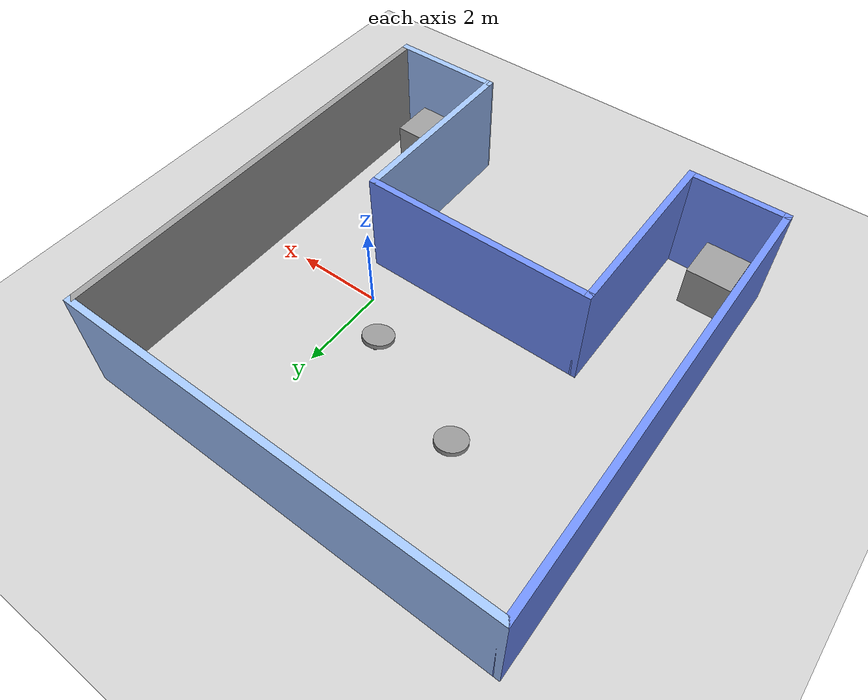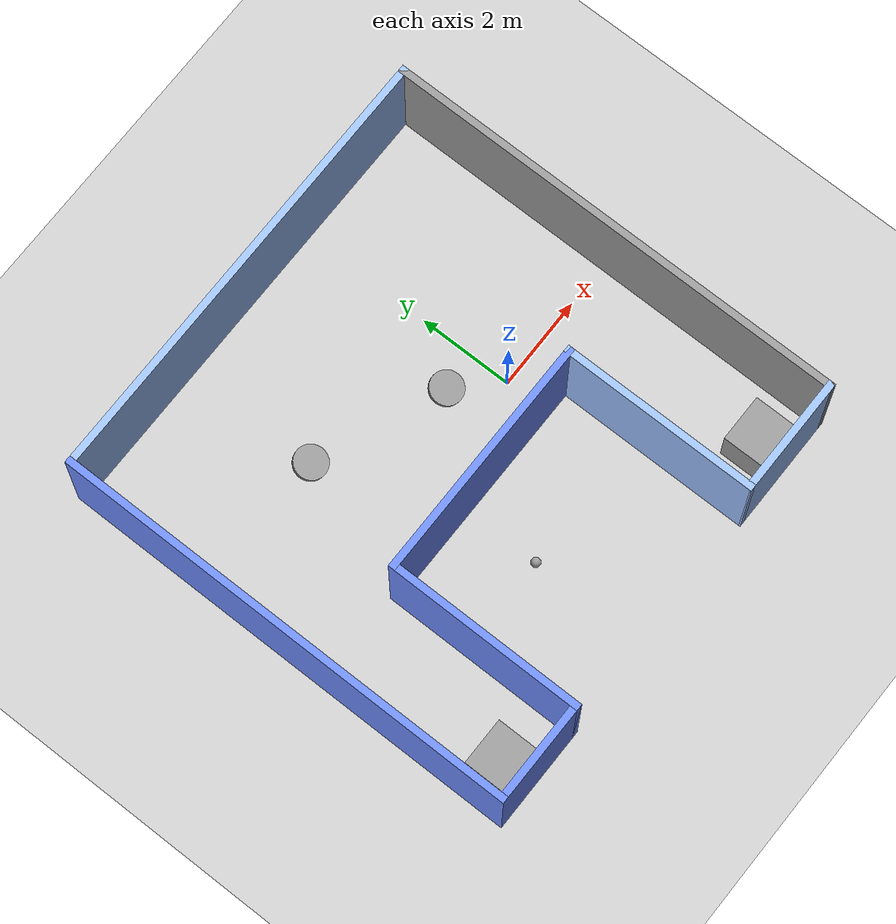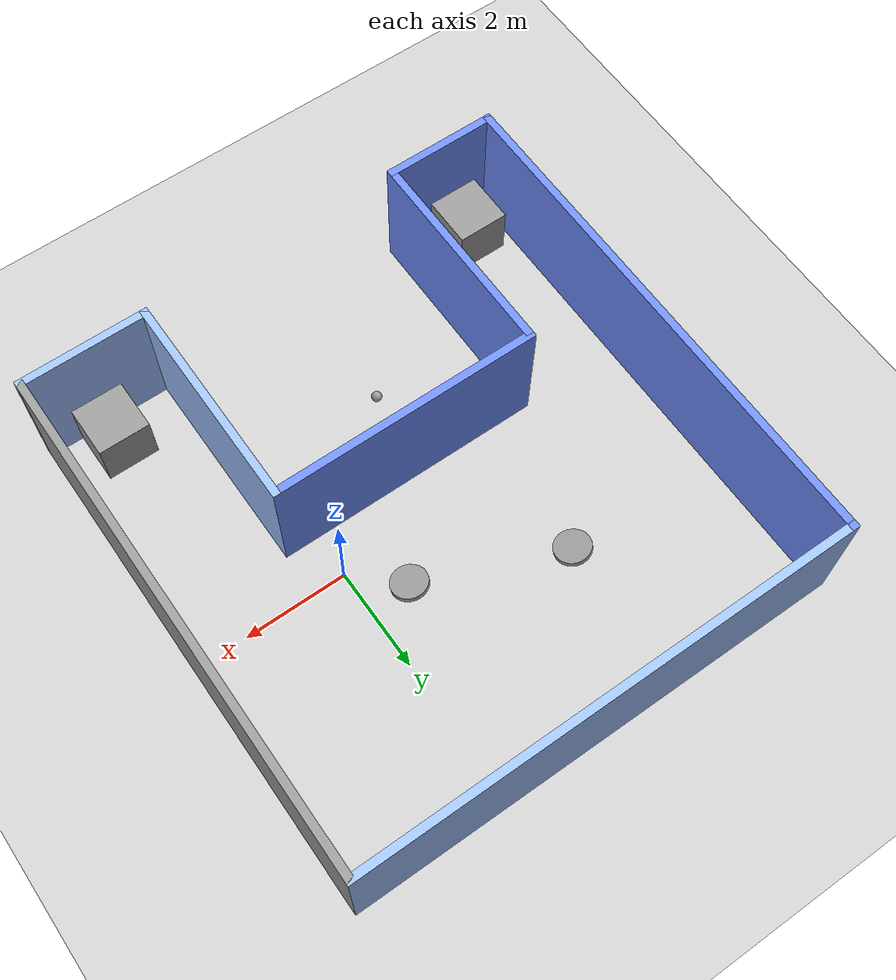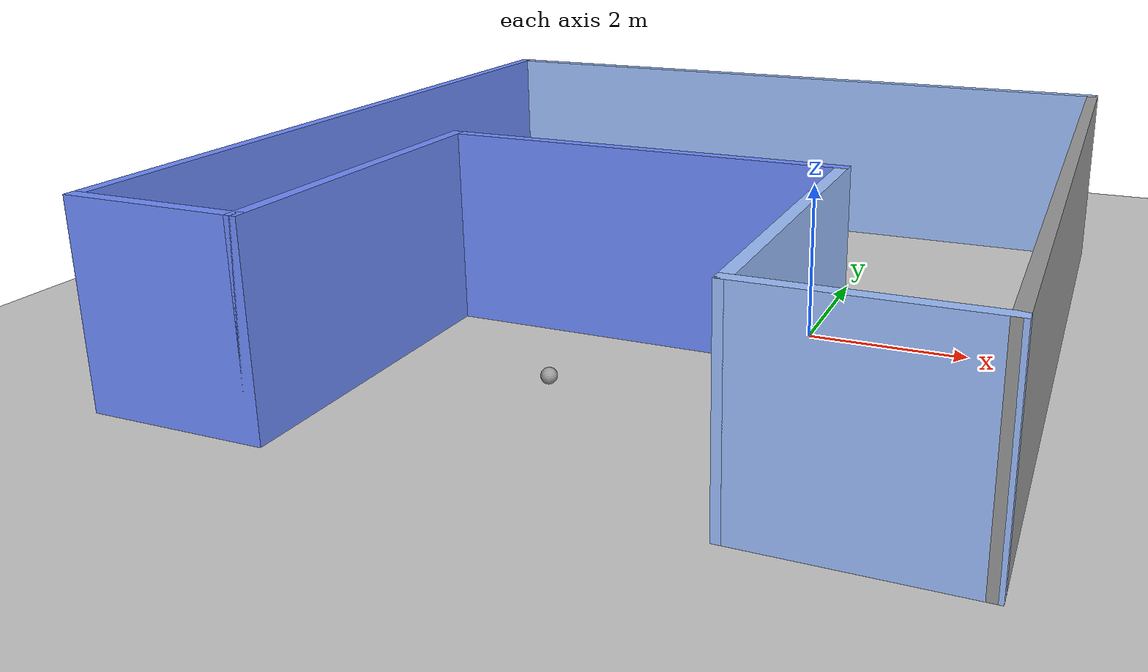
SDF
<sdf version="1.7">
 <world name="default">
  <light name="sun" type="directional">
   <pose>0 0 10 0 -0 0</pose>
   <diffuse>0.8 0.8 0.8 1</diffuse>
   <specular>0.2 0.2 0.2 1</specular>
   <attenuation>
    <range>1000</range>
    <constant>0.9</constant>
    <linear>0.01</linear>
    <quadratic>0.001</quadratic>
   </attenuation>
   <direction>-0.5 0.1 -0.9</direction>
   <spot><inner_angle>0</inner_angle><outer_angle>0</outer_angle><falloff>0</falloff></spot>
  </light>
  <model name="ground_plane">
   <static>1</static>
   <link name="link">
    <collision name="collision">
     <geometry><plane><normal>0 0 1</normal><size>100 100</size></plane></geometry>
     <surface>
      <contact><collide_bitmask>65535</collide_bitmask></contact>
      <friction><ode><mu>100</mu><mu2>50</mu2></ode></friction>
     </surface>
    </collision>
    <visual name="visual">
     <cast_shadows>0</cast_shadows>
     <geometry><plane><normal>0 0 1</normal><size>100 100</size></plane></geometry>
     <material>
      <script><uri>file://media/materials/scripts/gazebo.material</uri><name>Gazebo/Grey</name></script>
     </material>
    </visual>
   </link>
  </model>
  <gravity>0 0 -9.8</gravity>
  <magnetic_field>6e-06 2.3e-05 -4.2e-05</magnetic_field>
  <atmosphere type="adiabatic"/>
  <physics type="ode">
   <max_step_size>0.001</max_step_size>
   <real_time_factor>1</real_time_factor>
   <real_time_update_rate>1000</real_time_update_rate>
  </physics>
  <scene><ambient>0.4 0.4 0.4 1</ambient><background>0.7 0.7 0.7 1</background><shadows>1</shadows></scene>
  <spherical_coordinates>
   <surface_model>EARTH_WGS84</surface_model>
   <latitude_deg>0</latitude_deg>
   <longitude_deg>0</longitude_deg>
   <elevation>0</elevation>
   <heading_deg>0</heading_deg>
  </spherical_coordinates>
  <model name="mybuilding">
   <pose>-1.05977 -0.11513 0 0 -0 0</pose>
   <link name="Wall_29">
    <collision name="Wall_29_Collision">
     <geometry><box><size>9.75 0.15 2.5</size></box></geometry>
     <pose>0 0 1.25 0 -0 0</pose>
    </collision>
    <visual name="Wall_29_Visual">
     <pose>0 0 1.25 0 -0 0</pose>
     <geometry><box><size>9.75 0.15 2.5</size></box></geometry>
     <material>
      <script><uri>file://media/materials/scripts/gazebo.material</uri><name>Gazebo/Grey</name></script>
      <ambient>0.627451 0.760784 1 1</ambient>
     </material>
     <meta><layer>0</layer></meta>
    </visual>
    <pose>-0.774819 4.92501 0 0 -0 -4.9e-05</pose>
   </link>
   <link name="Wall_30">
    <collision name="Wall_30_Collision">
     <geometry><box><size>10 0.15 2.5</size></box></geometry>
     <pose>0 0 1.25 0 -0 0</pose>
    </collision>
    <visual name="Wall_30_Visual">
     <pose>0 0 1.25 0 -0 0</pose>
     <geometry><box><size>10 0.15 2.5</size></box></geometry>
     <material>
      <script><uri>file://media/materials/scripts/gazebo.material</uri><name>Gazebo/Grey</name></script>
      <ambient>1 1 1 1</ambient>
     </material>
     <meta><layer>0</layer></meta>
    </visual>
    <pose>4.02536 -0.00023 0 0 -0 -1.5708</pose>
   </link>
   <link name="Wall_32">
    <collision name="Wall_32_Collision">
     <geometry><box><size>10 0.15 2.5</size></box></geometry>
     <pose>0 0 1.25 0 -0 0</pose>
    </collision>
    <visual name="Wall_32_Visual">
     <pose>0 0 1.25 0 -0 0</pose>
     <geometry><box><size>10 0.15 2.5</size></box></geometry>
     <material>
      <script><uri>file://media/materials/scripts/gazebo.material</uri><name>Gazebo/Grey</name></script>
      <ambient>0.435294 0.556863 1 1</ambient>
     </material>
     <meta><layer>0</layer></meta>
    </visual>
    <pose>-5.575 0.000241 0 0 -0 -1.5708</pose>
   </link>
   <link name="Wall_34">
    <collision name="Wall_34_Collision">
     <geometry><box><size>2.25 0.15 2.5</size></box></geometry>
     <pose>0 0 1.25 0 -0 0</pose>
    </collision>
    <visual name="Wall_34_Visual">
     <pose>0 0 1.25 0 -0 0</pose>
     <geometry><box><size>2.25 0.15 2.5</size></box></geometry>
     <material>
      <script><uri>file://media/materials/scripts/gazebo.material</uri><name>Gazebo/Grey</name></script>
      <ambient>0.435294 0.556863 1 1</ambient>
     </material>
     <meta><layer>0</layer></meta>
    </visual>
    <pose>-4.525 -4.92476 0 0 -0 0</pose>
   </link>
   <link name="Wall_35">
    <collision name="Wall_35_Collision">
     <geometry><box><size>4.25 0.15 2.5</size></box></geometry>
     <pose>0 0 1.25 0 -0 0</pose>
    </collision>
    <visual name="Wall_35_Visual">
     <pose>0 0 1.25 0 -0 0</pose>
     <geometry><box><size>4.25 0.15 2.5</size></box></geometry>
     <material>
      <script><uri>file://media/materials/scripts/gazebo.material</uri><name>Gazebo/Grey</name></script>
      <ambient>0.435294 0.556863 1 1</ambient>
     </material>
     <meta><layer>0</layer></meta>
    </visual>
    <pose>-3.475 -2.87476 0 0 -0 1.5708</pose>
   </link>
   <link name="Wall_36">
    <collision name="Wall_36_Collision">
     <geometry><box><size>5.25 0.15 2.5</size></box></geometry>
     <pose>0 0 1.25 0 -0 0</pose>
    </collision>
    <visual name="Wall_36_Visual">
     <pose>0 0 1.25 0 -0 0</pose>
     <geometry><box><size>5.25 0.15 2.5</size></box></geometry>
     <material>
      <script><uri>file://media/materials/scripts/gazebo.material</uri><name>Gazebo/Grey</name></script>
      <ambient>0.435294 0.556863 1 1</ambient>
     </material>
     <meta><layer>0</layer></meta>
    </visual>
    <pose>-0.924999 -0.824759 0 0 -0 0</pose>
   </link>
   <link name="Wall_37">
    <collision name="Wall_37_Collision">
     <geometry><box><size>4.25 0.15 2.5</size></box></geometry>
     <pose>0 0 1.25 0 -0 0</pose>
    </collision>
    <visual name="Wall_37_Visual">
     <pose>0 0 1.25 0 -0 0</pose>
     <geometry><box><size>4.25 0.15 2.5</size></box></geometry>
     <material>
      <script><uri>file://media/materials/scripts/gazebo.material</uri><name>Gazebo/Grey</name></script>
      <ambient>0.619608 0.752941 1 1</ambient>
     </material>
     <meta><layer>0</layer></meta>
    </visual>
    <pose>1.625 -2.87476 0 0 -0 -1.5708</pose>
   </link>
   <link name="Wall_38">
    <collision name="Wall_38_Collision">
     <geometry><box><size>2.55036 0.15 2.5</size></box></geometry>
     <pose>0 0 1.25 0 -0 0</pose>
    </collision>
    <visual name="Wall_38_Visual">
     <pose>0 0 1.25 0 -0 0</pose>
     <geometry><box><size>2.55036 0.15 2.5</size></box></geometry>
     <material>
      <script><uri>file://media/materials/scripts/gazebo.material</uri><name>Gazebo/Grey</name></script>
      <ambient>0.619608 0.752941 1 1</ambient>
     </material>
     <meta><layer>0</layer></meta>
    </visual>
    <pose>2.82518 -4.92499 0 0 -0 -0.000196</pose>
   </link>
   <static>1</static>
  </model>
  <model name="unit_box">
   <pose>-5.8274 -4.46488 0.5 0 0 -5e-06</pose>
   <link name="link">
    <inertial>
     <mass>1</mass>
     <inertia>
      <ixx>0.166667</ixx>
      <ixy>0</ixy>
      <ixz>0</ixz>
      <iyy>0.166667</iyy>
      <iyz>0</iyz>
      <izz>0.166667</izz>
     </inertia>
    </inertial>
    <collision name="collision"><geometry><box><size>1 1 1</size></box></geometry></collision>
    <visual name="visual">
     <geometry><box><size>1 1 1</size></box></geometry>
     <material>
      <script><name>Gazebo/Grey</name><uri>file://media/materials/scripts/gazebo.material</uri></script>
     </material>
    </visual>
   </link>
  </model>
  <model name="unit_box_0">
   <pose>1.89847 -4.46513 0.5 0 0 -0.000191</pose>
   <link name="link">
    <inertial>
     <mass>1</mass>
     <inertia>
      <ixx>0.166667</ixx>
      <ixy>0</ixy>
      <ixz>0</ixz>
      <iyy>0.166667</iyy>
      <iyz>0</iyz>
      <izz>0.166667</izz>
     </inertia>
    </inertial>
    <collision name="collision"><geometry><box><size>1 1 1</size></box></geometry></collision>
    <visual name="visual">
     <geometry><box><size>1 1 1</size></box></geometry>
     <material>
      <script><name>Gazebo/Grey</name><uri>file://media/materials/scripts/gazebo.material</uri></script>
     </material>
    </visual>
   </link>
  </model>
  <model name="vacumm2_1">
   <link name="link_6">
    <inertial>
     <mass>1</mass>
     <inertia><ixx>0.145833</ixx><ixy>0</ixy><ixz>0</ixz><iyy>0.145833</iyy><iyz>0</iyz><izz>0.125</izz></inertia>
    </inertial>
    <pose>0.006667 0.055111 0.2 0 -0 0</pose>
    <visual name="visual">
     <pose>0 0 -0.2 0 -0 0</pose>
     <geometry><cylinder><radius>0.35</radius><length>0.1</length></cylinder></geometry>
     <material>
      <lighting>1</lighting>
      <script><uri>file://media/materials/scripts/gazebo.material</uri><name>Gazebo/Grey</name></script>
      <shader type="pixel"><normal_map>__default__</normal_map></shader>
      <ambient>0.3 0.3 0.3 1</ambient>
      <diffuse>0.7 0.7 0.7 1</diffuse>
      <specular>0.01 0.01 0.01 1</specular>
      <emissive>0 0 0 1</emissive>
     </material>
    </visual>
    <collision name="collision">
     <pose>0 0 -0.2 0 -0 0</pose>
     <geometry><cylinder><radius>0.35</radius><length>0.1</length></cylinder></geometry>
     <surface>
      <friction>
       <ode><mu>1</mu><mu2>1</mu2><fdir1>0 0 0</fdir1><slip1>0</slip1><slip2>0</slip2></ode>
       <torsional>
        <coefficient>1</coefficient>
        <patch_radius>0</patch_radius>
        <surface_radius>0</surface_radius>
        <use_patch_radius>1</use_patch_radius>
        <ode><slip>0</slip></ode>
       </torsional>
      </friction>
      <bounce><restitution_coefficient>0</restitution_coefficient><threshold>1e+06</threshold></bounce>
      <contact>
       <collide_without_contact>0</collide_without_contact>
       <collide_without_contact_bitmask>1</collide_without_contact_bitmask>
       <collide_bitmask>1</collide_bitmask>
       <ode>
        <soft_cfm>0</soft_cfm>
        <soft_erp>0.2</soft_erp>
        <kp>1e+13</kp>
        <kd>1</kd>
        <max_vel>0.01</max_vel>
        <min_depth>0</min_depth>
       </ode>
       <bullet>
        <split_impulse>1</split_impulse>
        <split_impulse_penetration_threshold>-0.01</split_impulse_penetration_threshold>
        <soft_cfm>0</soft_cfm>
        <soft_erp>0.2</soft_erp>
        <kp>1e+13</kp>
        <kd>1</kd>
       </bullet>
      </contact>
     </surface>
    </collision>
   </link>
   <link name="link_7">
    <inertial>
     <mass>1</mass>
     <inertia><ixx>0.145833</ixx><ixy>0</ixy><ixz>0</ixz><iyy>0.145833</iyy><iyz>0</iyz><izz>0.125</izz></inertia>
    </inertial>
    <pose>-0.013333 0.249858 -0.1 1.57 -0 0</pose>
    <visual name="visual">
     <geometry><cylinder><radius>0.1</radius><length>0.02</length></cylinder></geometry>
     <material>
      <lighting>1</lighting>
      <script><uri>file://media/materials/scripts/gazebo.material</uri><name>Gazebo/Grey</name></script>
      <shader type="pixel"><normal_map>__default__</normal_map></shader>
      <ambient>0.3 0.3 0.3 1</ambient>
      <diffuse>0.7 0.7 0.7 1</diffuse>
      <specular>0.01 0.01 0.01 1</specular>
      <emissive>0 0 0 1</emissive>
     </material>
    </visual>
    <collision name="collision">
     <geometry><cylinder><radius>0.1</radius><length>0.02</length></cylinder></geometry>
     <surface>
      <friction>
       <ode><mu>1</mu><mu2>1</mu2><fdir1>0 0 0</fdir1><slip1>0</slip1><slip2>0</slip2></ode>
       <torsional>
        <coefficient>1</coefficient>
        <patch_radius>0</patch_radius>
        <surface_radius>0</surface_radius>
        <use_patch_radius>1</use_patch_radius>
        <ode><slip>0</slip></ode>
       </torsional>
      </friction>
      <bounce><restitution_coefficient>0</restitution_coefficient><threshold>1e+06</threshold></bounce>
      <contact>
       <collide_without_contact>0</collide_without_contact>
       <collide_without_contact_bitmask>1</collide_without_contact_bitmask>
       <collide_bitmask>1</collide_bitmask>
       <ode>
        <soft_cfm>0</soft_cfm>
        <soft_erp>0.2</soft_erp>
        <kp>1e+13</kp>
        <kd>1</kd>
        <max_vel>0.01</max_vel>
        <min_depth>0</min_depth>
       </ode>
       <bullet>
        <split_impulse>1</split_impulse>
        <split_impulse_penetration_threshold>-0.01</split_impulse_penetration_threshold>
        <soft_cfm>0</soft_cfm>
        <soft_erp>0.2</soft_erp>
        <kp>1e+13</kp>
        <kd>1</kd>
       </bullet>
      </contact>
     </surface>
    </collision>
   </link>
   <link name="link_7_clone">
    <inertial>
     <mass>1</mass>
     <inertia><ixx>0.145833</ixx><ixy>0</ixy><ixz>0</ixz><iyy>0.145833</iyy><iyz>0</iyz><izz>0.125</izz></inertia>
    </inertial>
    <pose>0.006667 -0.144889 -0.1 1.57 -0 0</pose>
    <visual name="visual">
     <geometry><cylinder><radius>0.1</radius><length>0.02</length></cylinder></geometry>
     <material>
      <lighting>1</lighting>
      <script><uri>file://media/materials/scripts/gazebo.material</uri><name>Gazebo/Grey</name></script>
      <shader type="pixel"><normal_map>__default__</normal_map></shader>
      <ambient>0.3 0.3 0.3 1</ambient>
      <diffuse>0.7 0.7 0.7 1</diffuse>
      <specular>0.01 0.01 0.01 1</specular>
      <emissive>0 0 0 1</emissive>
     </material>
    </visual>
    <collision name="collision">
     <geometry><cylinder><radius>0.1</radius><length>0.02</length></cylinder></geometry>
     <surface>
      <friction>
       <ode><mu>1</mu><mu2>1</mu2><fdir1>0 0 0</fdir1><slip1>0</slip1><slip2>0</slip2></ode>
       <torsional>
        <coefficient>1</coefficient>
        <patch_radius>0</patch_radius>
        <surface_radius>0</surface_radius>
        <use_patch_radius>1</use_patch_radius>
        <ode><slip>0</slip></ode>
       </torsional>
      </friction>
      <bounce><restitution_coefficient>0</restitution_coefficient><threshold>1e+06</threshold></bounce>
      <contact>
       <collide_without_contact>0</collide_without_contact>
       <collide_without_contact_bitmask>1</collide_without_contact_bitmask>
       <collide_bitmask>1</collide_bitmask>
       <ode>
        <soft_cfm>0</soft_cfm>
        <soft_erp>0.2</soft_erp>
        <kp>1e+13</kp>
        <kd>1</kd>
        <max_vel>0.01</max_vel>
        <min_depth>0</min_depth>
       </ode>
       <bullet>
        <split_impulse>1</split_impulse>
        <split_impulse_penetration_threshold>-0.01</split_impulse_penetration_threshold>
        <soft_cfm>0</soft_cfm>
        <soft_erp>0.2</soft_erp>
        <kp>1e+13</kp>
        <kd>1</kd>
       </bullet>
      </contact>
     </surface>
    </collision>
   </link>
   <joint name="link_6_JOINT_7" type="revolute">
    <parent>link_6</parent>
    <child>link_7</child>
    <axis>
     <xyz>0 0 1</xyz>
     <limit>
      <lower>-1.79769e+308</lower>
      <upper>1.79769e+308</upper>
      <effort>-1</effort>
      <velocity>-1</velocity>
     </limit>
     <dynamics>
      <spring_reference>0</spring_reference>
      <spring_stiffness>0</spring_stiffness>
      <damping>0</damping>
     </dynamics>
    </axis>
    <physics>
     <ode><limit><cfm>0</cfm><erp>0.2</erp></limit><suspension><cfm>0</cfm><erp>0.2</erp></suspension></ode>
    </physics>
   </joint>
   <joint name="link_6_JOINT_8" type="revolute">
    <parent>link_6</parent>
    <child>link_7_clone</child>
    <axis>
     <xyz>1 0 0</xyz>
     <limit>
      <lower>-1.79769e+308</lower>
      <upper>1.79769e+308</upper>
      <effort>-1</effort>
      <velocity>-1</velocity>
     </limit>
     <dynamics>
      <spring_reference>0</spring_reference>
      <spring_stiffness>0</spring_stiffness>
      <damping>0</damping>
     </dynamics>
    </axis>
    <physics>
     <ode><limit><cfm>0</cfm><erp>0.2</erp></limit><suspension><cfm>0</cfm><erp>0.2</erp></suspension></ode>
    </physics>
   </joint>
   <static>0</static>
   <pose>-3.5114 1.8439 0.140298 0.229153 -0 0.381229</pose>
  </model>
  <model name="vacumm2_1_clone">
   <link name="link_6">
    <inertial>
     <mass>1</mass>
     <inertia><ixx>0.145833</ixx><ixy>0</ixy><ixz>0</ixz><iyy>0.145833</iyy><iyz>0</iyz><izz>0.125</izz></inertia>
    </inertial>
    <pose>0.006667 0.055111 0.2 0 -0 0</pose>
    <visual name="visual">
     <pose>0 0 -0.2 0 -0 0</pose>
     <geometry><cylinder><radius>0.35</radius><length>0.1</length></cylinder></geometry>
     <material>
      <lighting>1</lighting>
      <script><uri>file://media/materials/scripts/gazebo.material</uri><name>Gazebo/Grey</name></script>
      <shader type="pixel"><normal_map>__default__</normal_map></shader>
      <ambient>0.3 0.3 0.3 1</ambient>
      <diffuse>0.7 0.7 0.7 1</diffuse>
      <specular>0.01 0.01 0.01 1</specular>
      <emissive>0 0 0 1</emissive>
     </material>
    </visual>
    <collision name="collision">
     <pose>0 0 -0.2 0 -0 0</pose>
     <geometry><cylinder><radius>0.35</radius><length>0.1</length></cylinder></geometry>
     <surface>
      <friction>
       <ode><mu>1</mu><mu2>1</mu2><fdir1>0 0 0</fdir1><slip1>0</slip1><slip2>0</slip2></ode>
       <torsional>
        <coefficient>1</coefficient>
        <patch_radius>0</patch_radius>
        <surface_radius>0</surface_radius>
        <use_patch_radius>1</use_patch_radius>
        <ode><slip>0</slip></ode>
       </torsional>
      </friction>
      <bounce><restitution_coefficient>0</restitution_coefficient><threshold>1e+06</threshold></bounce>
      <contact>
       <collide_without_contact>0</collide_without_contact>
       <collide_without_contact_bitmask>1</collide_without_contact_bitmask>
       <collide_bitmask>1</collide_bitmask>
       <ode>
        <soft_cfm>0</soft_cfm>
        <soft_erp>0.2</soft_erp>
        <kp>1e+13</kp>
        <kd>1</kd>
        <max_vel>0.01</max_vel>
        <min_depth>0</min_depth>
       </ode>
       <bullet>
        <split_impulse>1</split_impulse>
        <split_impulse_penetration_threshold>-0.01</split_impulse_penetration_threshold>
        <soft_cfm>0</soft_cfm>
        <soft_erp>0.2</soft_erp>
        <kp>1e+13</kp>
        <kd>1</kd>
       </bullet>
      </contact>
     </surface>
    </collision>
   </link>
   <link name="link_7">
    <inertial>
     <mass>1</mass>
     <inertia><ixx>0.145833</ixx><ixy>0</ixy><ixz>0</ixz><iyy>0.145833</iyy><iyz>0</iyz><izz>0.125</izz></inertia>
    </inertial>
    <pose>-0.013333 0.249858 -0.1 1.57 -0 0</pose>
    <visual name="visual">
     <geometry><cylinder><radius>0.1</radius><length>0.02</length></cylinder></geometry>
     <material>
      <lighting>1</lighting>
      <script><uri>file://media/materials/scripts/gazebo.material</uri><name>Gazebo/Grey</name></script>
      <shader type="pixel"><normal_map>__default__</normal_map></shader>
      <ambient>0.3 0.3 0.3 1</ambient>
      <diffuse>0.7 0.7 0.7 1</diffuse>
      <specular>0.01 0.01 0.01 1</specular>
      <emissive>0 0 0 1</emissive>
     </material>
    </visual>
    <collision name="collision">
     <geometry><cylinder><radius>0.1</radius><length>0.02</length></cylinder></geometry>
     <surface>
      <friction>
       <ode><mu>1</mu><mu2>1</mu2><fdir1>0 0 0</fdir1><slip1>0</slip1><slip2>0</slip2></ode>
       <torsional>
        <coefficient>1</coefficient>
        <patch_radius>0</patch_radius>
        <surface_radius>0</surface_radius>
        <use_patch_radius>1</use_patch_radius>
        <ode><slip>0</slip></ode>
       </torsional>
      </friction>
      <bounce><restitution_coefficient>0</restitution_coefficient><threshold>1e+06</threshold></bounce>
      <contact>
       <collide_without_contact>0</collide_without_contact>
       <collide_without_contact_bitmask>1</collide_without_contact_bitmask>
       <collide_bitmask>1</collide_bitmask>
       <ode>
        <soft_cfm>0</soft_cfm>
        <soft_erp>0.2</soft_erp>
        <kp>1e+13</kp>
        <kd>1</kd>
        <max_vel>0.01</max_vel>
        <min_depth>0</min_depth>
       </ode>
       <bullet>
        <split_impulse>1</split_impulse>
        <split_impulse_penetration_threshold>-0.01</split_impulse_penetration_threshold>
        <soft_cfm>0</soft_cfm>
        <soft_erp>0.2</soft_erp>
        <kp>1e+13</kp>
        <kd>1</kd>
       </bullet>
      </contact>
     </surface>
    </collision>
   </link>
   <link name="link_7_clone">
    <inertial>
     <mass>1</mass>
     <inertia><ixx>0.145833</ixx><ixy>0</ixy><ixz>0</ixz><iyy>0.145833</iyy><iyz>0</iyz><izz>0.125</izz></inertia>
    </inertial>
    <pose>0.006667 -0.144889 -0.1 1.57 -0 0</pose>
    <visual name="visual">
     <geometry><cylinder><radius>0.1</radius><length>0.02</length></cylinder></geometry>
     <material>
      <lighting>1</lighting>
      <script><uri>file://media/materials/scripts/gazebo.material</uri><name>Gazebo/Grey</name></script>
      <shader type="pixel"><normal_map>__default__</normal_map></shader>
      <ambient>0.3 0.3 0.3 1</ambient>
      <diffuse>0.7 0.7 0.7 1</diffuse>
      <specular>0.01 0.01 0.01 1</specular>
      <emissive>0 0 0 1</emissive>
     </material>
    </visual>
    <collision name="collision">
     <geometry><cylinder><radius>0.1</radius><length>0.02</length></cylinder></geometry>
     <surface>
      <friction>
       <ode><mu>1</mu><mu2>1</mu2><fdir1>0 0 0</fdir1><slip1>0</slip1><slip2>0</slip2></ode>
       <torsional>
        <coefficient>1</coefficient>
        <patch_radius>0</patch_radius>
        <surface_radius>0</surface_radius>
        <use_patch_radius>1</use_patch_radius>
        <ode><slip>0</slip></ode>
       </torsional>
      </friction>
      <bounce><restitution_coefficient>0</restitution_coefficient><threshold>1e+06</threshold></bounce>
      <contact>
       <collide_without_contact>0</collide_without_contact>
       <collide_without_contact_bitmask>1</collide_without_contact_bitmask>
       <collide_bitmask>1</collide_bitmask>
       <ode>
        <soft_cfm>0</soft_cfm>
        <soft_erp>0.2</soft_erp>
        <kp>1e+13</kp>
        <kd>1</kd>
        <max_vel>0.01</max_vel>
        <min_depth>0</min_depth>
       </ode>
       <bullet>
        <split_impulse>1</split_impulse>
        <split_impulse_penetration_threshold>-0.01</split_impulse_penetration_threshold>
        <soft_cfm>0</soft_cfm>
        <soft_erp>0.2</soft_erp>
        <kp>1e+13</kp>
        <kd>1</kd>
       </bullet>
      </contact>
     </surface>
    </collision>
   </link>
   <joint name="link_6_JOINT_7" type="revolute">
    <parent>link_6</parent>
    <child>link_7</child>
    <axis>
     <xyz>0 0 1</xyz>
     <limit>
      <lower>-1.79769e+308</lower>
      <upper>1.79769e+308</upper>
      <effort>-1</effort>
      <velocity>-1</velocity>
     </limit>
     <dynamics>
      <spring_reference>0</spring_reference>
      <spring_stiffness>0</spring_stiffness>
      <damping>0</damping>
     </dynamics>
    </axis>
    <physics>
     <ode><limit><cfm>0</cfm><erp>0.2</erp></limit><suspension><cfm>0</cfm><erp>0.2</erp></suspension></ode>
    </physics>
   </joint>
   <joint name="link_6_JOINT_8" type="revolute">
    <parent>link_6</parent>
    <child>link_7_clone</child>
    <axis>
     <xyz>1 0 0</xyz>
     <limit>
      <lower>-1.79769e+308</lower>
      <upper>1.79769e+308</upper>
      <effort>-1</effort>
      <velocity>-1</velocity>
     </limit>
     <dynamics>
      <spring_reference>0</spring_reference>
      <spring_stiffness>0</spring_stiffness>
      <damping>0</damping>
     </dynamics>
    </axis>
    <physics>
     <ode><limit><cfm>0</cfm><erp>0.2</erp></limit><suspension><cfm>0</cfm><erp>0.2</erp></suspension></ode>
    </physics>
   </joint>
   <static>0</static>
   <pose>-0.814106 0.753782 0.140298 0.229153 -0 0.180978</pose>
  </model>
  <model name="my_ball">
   <link name="link">
    <inertial>
     <mass>1</mass>
     <inertia><ixx>0.1</ixx><ixy>0</ixy><ixz>0</ixz><iyy>0.1</iyy><iyz>0</iyz><izz>0.1</izz></inertia>
    </inertial>
    <visual name="visual">
     <geometry><sphere><radius>0.1</radius></sphere></geometry>
     <material>
      <script><name>Gazebo/Grey</name><uri>file://media/materials/scripts/gazebo.material</uri></script>
      <shader type="pixel"><normal_map>__default__</normal_map></shader>
      <ambient>1 1 1 1</ambient>
      <diffuse>1 1 1 1</diffuse>
      <specular>1 1 1 1</specular>
      <emissive>0 0 0 1</emissive>
     </material>
    </visual>
    <collision name="collision">
     <geometry><sphere><radius>0.1</radius></sphere></geometry>
     <surface>
      <friction>
       <ode><mu>1</mu><mu2>1</mu2><fdir1>0 0 0</fdir1><slip1>0</slip1><slip2>0</slip2></ode>
       <torsional>
        <coefficient>1</coefficient>
        <patch_radius>0</patch_radius>
        <surface_radius>0</surface_radius>
        <use_patch_radius>1</use_patch_radius>
        <ode><slip>0</slip></ode>
       </torsional>
      </friction>
      <bounce><restitution_coefficient>0</restitution_coefficient><threshold>1e+06</threshold></bounce>
      <contact>
       <collide_without_contact>0</collide_without_contact>
       <collide_without_contact_bitmask>1</collide_without_contact_bitmask>
       <collide_bitmask>1</collide_bitmask>
       <ode>
        <soft_cfm>0</soft_cfm>
        <soft_erp>0.2</soft_erp>
        <kp>1e+13</kp>
        <kd>1</kd>
        <max_vel>0.01</max_vel>
        <min_depth>0</min_depth>
       </ode>
       <bullet>
        <split_impulse>1</split_impulse>
        <split_impulse_penetration_threshold>-0.01</split_impulse_penetration_threshold>
        <soft_cfm>0</soft_cfm>
        <soft_erp>0.2</soft_erp>
        <kp>1e+13</kp>
        <kd>1</kd>
       </bullet>
      </contact>
     </surface>
    </collision>
   </link>
   <static>0</static>
   <pose>-2.42372 -2.56852 0.1 0 -0 0</pose>
  </model>
 </world>
</sdf>
